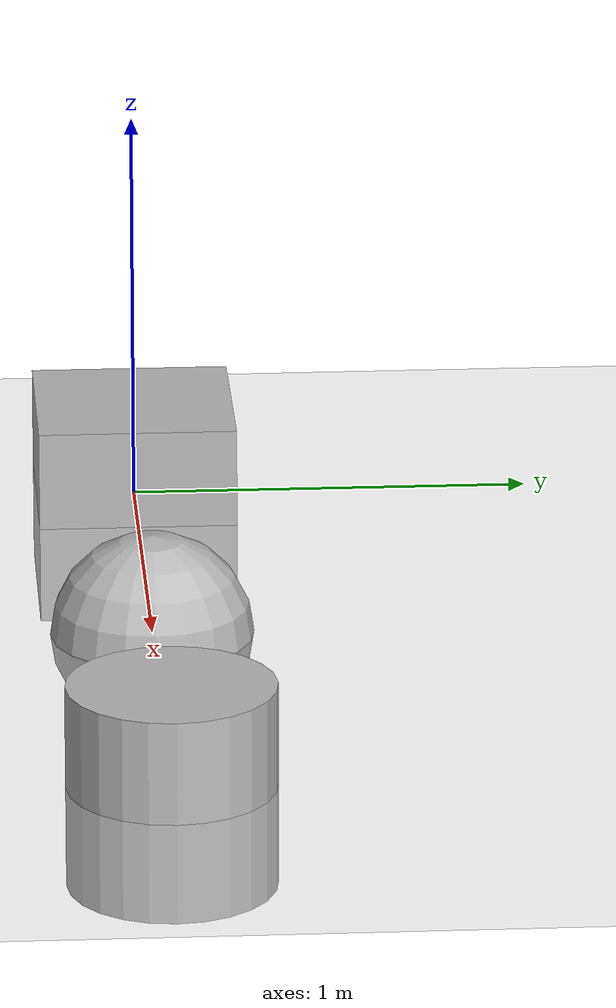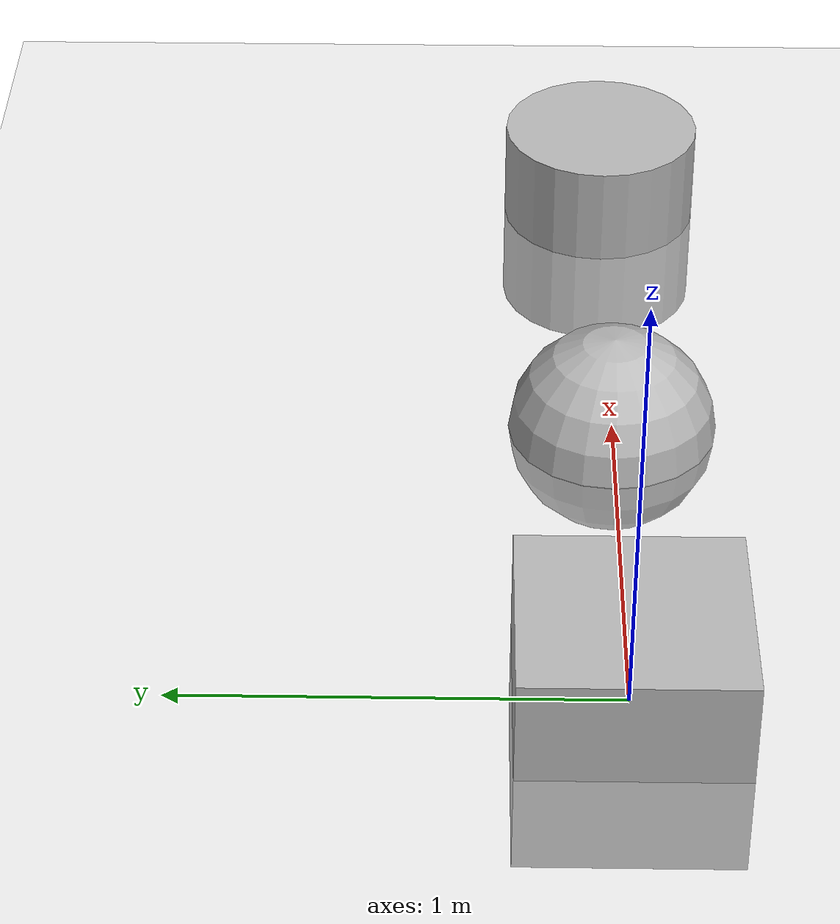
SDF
<?xml version="1.0" ?>
<sdf version="1.5">
  <world name="default">

    <include>
      <uri>model://sun</uri>
    </include>

    <model name="box_1">
      <pose>0 0 0 0 0 0</pose>
      <link name="link">
        <collision name="collision">
          <geometry>
            <box>
              <size>0.5 0.5 0.5</size>
            </box>
          </geometry>
        </collision>
        <visual name="visual">
          <geometry>
            <box>
              <size>0.5 0.5 0.5</size>
            </box>
          </geometry>
          <plugin name="visual_utils" filename="libVisualUtils.so">
            <uid>box_1</uid>
            <patterns>
              Plugin/flat_
            </patterns>
            <variants>100</variants>
          </plugin>
        </visual>
      </link>
    </model>

    <model name="sphere_1">
      <pose>1 0 0 0 0 0</pose>
      <link name="link">
        <collision name="collision">
          <geometry>
            <box>
              <size>0.5 0.5 0.5</size>
            </box>
          </geometry>
        </collision>
        <visual name="visual">
          <geometry>
            <sphere>
              <radius>0.25</radius>
            </sphere>
          </geometry>
          <plugin name="visual_utils" filename="libVisualUtils.so">
            <uid>sphere_1</uid>
            <patterns>
              Plugin/chess_
            </patterns>
            <variants>100</variants>
          </plugin>
        </visual>
      </link>
    </model>

    <model name="cylinder_1">
      <pose>2 0 0 0 0 0</pose>
      <link name="link">
        <collision name="collision">
          <geometry>
            <box>
              <size>0.5 0.5 0.5</size>
            </box>
          </geometry>
        </collision>
        <visual name="visual">
          <geometry>
            <cylinder>
              <radius>0.25</radius>
              <length>0.5</length>
            </cylinder>
          </geometry>
          <plugin name="visual_utils" filename="libVisualUtils.so">
            <uid>cylinder_1</uid>
            <patterns>
              Plugin/perlin_
            </patterns>
            <variants>100</variants>
          </plugin>
        </visual>
      </link>
    </model>

    <model name="ground_plane">
      <static>true</static>
      <pose>0 0 0 0 0 0</pose>

      <link name="link">

        <collision name="collision">
          <geometry>
            <plane>
              <normal>0 0 1</normal>
              <size>10 10</size>
            </plane>
          </geometry>
        </collision>

        <visual name="visual">
          <cast_shadows>false</cast_shadows>
          <geometry>
            <plane>
              <normal>0 0 1</normal>
              <size>10 10</size>
            </plane>
          </geometry>
          <plugin name="visual_utils" filename="libVisualUtils.so">
            <uid>ground_1</uid>
            <patterns>
              Plugin/flat_
              Plugin/gradient_
              Plugin/chess_
              Plugin/perlin_
            </patterns>
            <variants>100</variants>
          </plugin>
        </visual>
      </link>
    </model>
  </world>
</sdf>
